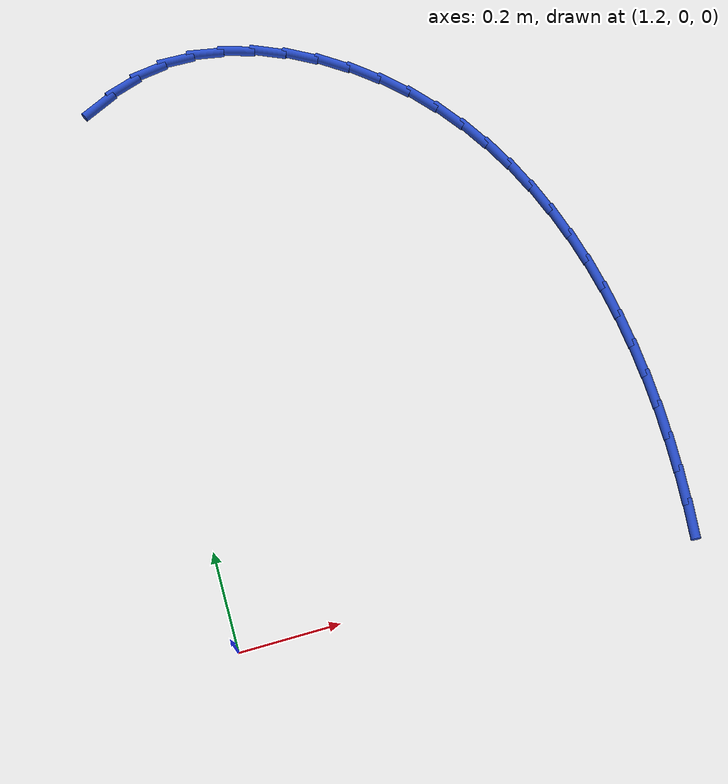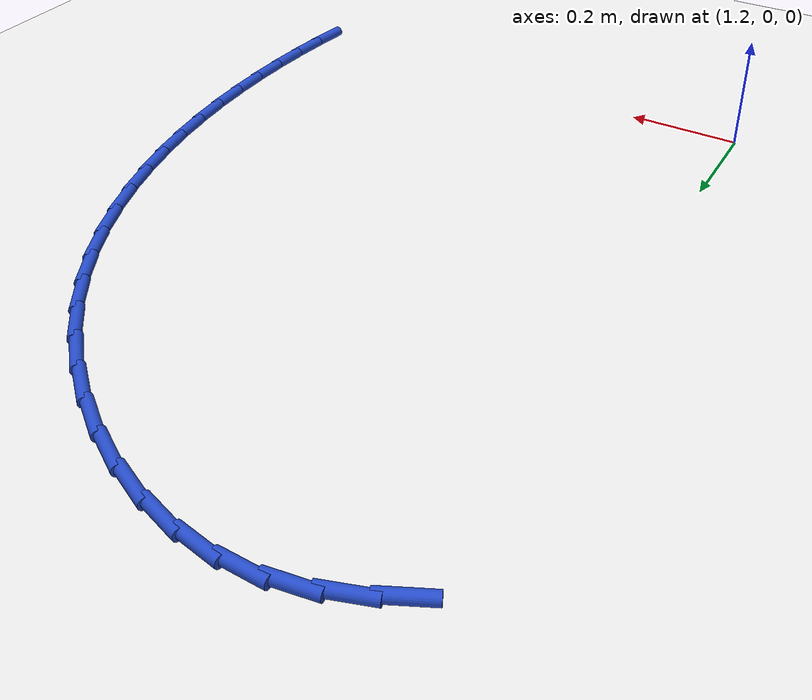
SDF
<sdf version="1.6">
 <world name="default">
  <model name="ground_plane">
   <static>1</static>
   <link name="link">
    <collision name="collision">
     <geometry><plane><normal>0 0 1</normal><size>100 100</size></plane></geometry>
     <surface><friction><ode><mu>100</mu><mu2>50</mu2></ode></friction></surface>
    </collision>
    <visual name="visual">
     <cast_shadows>0</cast_shadows>
     <geometry><plane><normal>0 0 1</normal><size>100 100</size></plane></geometry>
     <material>
      <script><uri>file://media/materials/scripts/gazebo.material</uri><name>Gazebo/WhiteGlow</name></script>
     </material>
    </visual>
   </link>
  </model>
  <model name="line">
   <link name="link_27">
    <pose>1.2015639100827145 1.1851119306090003 0.01 0 1.57 0.4538602692561115</pose>
    <collision name="collision">
     <geometry><cylinder><radius>0.01</radius><length>0.08</length></cylinder></geometry>
    </collision>
    <visual name="visual">
     <material>
      <script><name>Gazebo/Blue</name><uri>file://media/materials/scripts/gazebo.material</uri></script>
     </material>
     <geometry><cylinder><radius>0.01</radius><length>0.08</length></cylinder></geometry>
    </visual>
   </link>
   <link name="link_28">
    <pose>1.2601570572746963 1.2136951336286916 0.01 0 1.57 0.3276897388682531</pose>
    <collision name="collision">
     <geometry><cylinder><radius>0.01</radius><length>0.08</length></cylinder></geometry>
    </collision>
    <visual name="visual">
     <material>
      <script><name>Gazebo/Blue</name><uri>file://media/materials/scripts/gazebo.material</uri></script>
     </material>
     <geometry><cylinder><radius>0.01</radius><length>0.08</length></cylinder></geometry>
    </visual>
   </link>
   <link name="link_29">
    <pose>1.3202526689146474 1.2341243721097086 0.01 0 1.57 0.15443720086766038</pose>
    <collision name="collision">
     <geometry><cylinder><radius>0.01</radius><length>0.08</length></cylinder></geometry>
    </collision>
    <visual name="visual">
     <material>
      <script><name>Gazebo/Blue</name><uri>file://media/materials/scripts/gazebo.material</uri></script>
     </material>
     <geometry><cylinder><radius>0.01</radius><length>0.08</length></cylinder></geometry>
    </visual>
   </link>
   <link name="link_30">
    <pose>1.3825758231914693 1.2438266443450883 0.01 0 1.57 -0.02339864624832676</pose>
    <collision name="collision">
     <geometry><cylinder><radius>0.01</radius><length>0.08</length></cylinder></geometry>
    </collision>
    <visual name="visual">
     <material>
      <script><name>Gazebo/Blue</name><uri>file://media/materials/scripts/gazebo.material</uri></script>
     </material>
     <geometry><cylinder><radius>0.01</radius><length>0.08</length></cylinder></geometry>
    </visual>
   </link>
   <link name="link_31">
    <pose>1.4468393557570047 1.2423226901999507 0.01 0 1.57 -0.1763520755685597</pose>
    <collision name="collision">
     <geometry><cylinder><radius>0.01</radius><length>0.08</length></cylinder></geometry>
    </collision>
    <visual name="visual">
     <material>
      <script><name>Gazebo/Blue</name><uri>file://media/materials/scripts/gazebo.material</uri></script>
     </material>
     <geometry><cylinder><radius>0.01</radius><length>0.08</length></cylinder></geometry>
    </visual>
   </link>
   <link name="link_32">
    <pose>1.5119927717317077 1.2307121368201703 0.01 0 1.57 -0.30672730194467884</pose>
    <collision name="collision">
     <geometry><cylinder><radius>0.01</radius><length>0.08</length></cylinder></geometry>
    </collision>
    <visual name="visual">
     <material>
      <script><name>Gazebo/Blue</name><uri>file://media/materials/scripts/gazebo.material</uri></script>
     </material>
     <geometry><cylinder><radius>0.01</radius><length>0.08</length></cylinder></geometry>
    </visual>
   </link>
   <link name="link_33">
    <pose>1.576966837322935 1.210133371273216 0.01 0 1.57 -0.41935272130842277</pose>
    <collision name="collision">
     <geometry><cylinder><radius>0.01</radius><length>0.08</length></cylinder></geometry>
    </collision>
    <visual name="visual">
     <material>
      <script><name>Gazebo/Blue</name><uri>file://media/materials/scripts/gazebo.material</uri></script>
     </material>
     <geometry><cylinder><radius>0.01</radius><length>0.08</length></cylinder></geometry>
    </visual>
   </link>
   <link name="link_34">
    <pose>1.6406923187380418 1.1817247806265578 0.01 0 1.57 -0.5192680721739549</pose>
    <collision name="collision">
     <geometry><cylinder><radius>0.01</radius><length>0.08</length></cylinder></geometry>
    </collision>
    <visual name="visual">
     <material>
      <script><name>Gazebo/Blue</name><uri>file://media/materials/scripts/gazebo.material</uri></script>
     </material>
     <geometry><cylinder><radius>0.01</radius><length>0.08</length></cylinder></geometry>
    </visual>
   </link>
   <link name="link_35">
    <pose>1.7020999821843836 1.1466247519476649 0.01 0 1.57 -0.6111729169734123</pose>
    <collision name="collision">
     <geometry><cylinder><radius>0.01</radius><length>0.08</length></cylinder></geometry>
    </collision>
    <visual name="visual">
     <material>
      <script><name>Gazebo/Blue</name><uri>file://media/materials/scripts/gazebo.material</uri></script>
     </material>
     <geometry><cylinder><radius>0.01</radius><length>0.08</length></cylinder></geometry>
    </visual>
   </link>
   <link name="link_36">
    <pose>1.7601205938693167 1.1059716723040065 0.01 0 1.57 -0.699463475711775</pose>
    <collision name="collision">
     <geometry><cylinder><radius>0.01</radius><length>0.08</length></cylinder></geometry>
    </collision>
    <visual name="visual">
     <material>
      <script><name>Gazebo/Blue</name><uri>file://media/materials/scripts/gazebo.material</uri></script>
     </material>
     <geometry><cylinder><radius>0.01</radius><length>0.08</length></cylinder></geometry>
    </visual>
   </link>
   <link name="link_37">
    <pose>1.8136859520671191 1.0609032993851495 0.01 0 1.57 -0.7871317659783342</pose>
    <collision name="collision">
     <geometry><cylinder><radius>0.01</radius><length>0.08</length></cylinder></geometry>
    </collision>
    <visual name="visual">
     <material>
      <script><name>Gazebo/Blue</name><uri>file://media/materials/scripts/gazebo.material</uri></script>
     </material>
     <geometry><cylinder><radius>0.01</radius><length>0.08</length></cylinder></geometry>
    </visual>
   </link>
   <link name="link_38">
    <pose>1.8620762477513373 1.0123449330819245 0.01 0 1.57 -0.872496702733254</pose>
    <collision name="collision">
     <geometry><cylinder><radius>0.01</radius><length>0.08</length></cylinder></geometry>
    </collision>
    <visual name="visual">
     <material>
      <script><name>Gazebo/Blue</name><uri>file://media/materials/scripts/gazebo.material</uri></script>
     </material>
     <geometry><cylinder><radius>0.01</radius><length>0.08</length></cylinder></geometry>
    </visual>
   </link>
   <link name="link_39">
    <pose>1.9054250374542294 0.9607014715416686 0.01 0 1.57 -0.9540780060078512</pose>
    <collision name="collision">
     <geometry><cylinder><radius>0.01</radius><length>0.08</length></cylinder></geometry>
    </collision>
    <visual name="visual">
     <material>
      <script><name>Gazebo/Blue</name><uri>file://media/materials/scripts/gazebo.material</uri></script>
     </material>
     <geometry><cylinder><radius>0.01</radius><length>0.08</length></cylinder></geometry>
    </visual>
   </link>
   <link name="link_40">
    <pose>1.9439941324186176 0.9062996002696566 0.01 0 1.57 -1.0310103119718033</pose>
    <collision name="collision">
     <geometry><cylinder><radius>0.01</radius><length>0.08</length></cylinder></geometry>
    </collision>
    <visual name="visual">
     <material>
      <script><name>Gazebo/Blue</name><uri>file://media/materials/scripts/gazebo.material</uri></script>
     </material>
     <geometry><cylinder><radius>0.01</radius><length>0.08</length></cylinder></geometry>
    </visual>
   </link>
   <link name="link_41">
    <pose>1.9780453438873278 0.8494660047711644 0.01 0 1.57 -1.1027359775084074</pose>
    <collision name="collision">
     <geometry><cylinder><radius>0.01</radius><length>0.08</length></cylinder></geometry>
    </collision>
    <visual name="visual">
     <material>
      <script><name>Gazebo/Blue</name><uri>file://media/materials/scripts/gazebo.material</uri></script>
     </material>
     <geometry><cylinder><radius>0.01</radius><length>0.08</length></cylinder></geometry>
    </visual>
   </link>
   <link name="link_42">
    <pose>2.007840483103184 0.7905273705514672 0.01 0 1.57 -1.1689792693070489</pose>
    <collision name="collision">
     <geometry><cylinder><radius>0.01</radius><length>0.08</length></cylinder></geometry>
    </collision>
    <visual name="visual">
     <material>
      <script><name>Gazebo/Blue</name><uri>file://media/materials/scripts/gazebo.material</uri></script>
     </material>
     <geometry><cylinder><radius>0.01</radius><length>0.08</length></cylinder></geometry>
    </visual>
   </link>
   <link name="link_43">
    <pose>2.0336413613090105 0.7298103831158399 0.01 0 1.57 -1.2296959417531081</pose>
    <collision name="collision">
     <geometry><cylinder><radius>0.01</radius><length>0.08</length></cylinder></geometry>
    </collision>
    <visual name="visual">
     <material>
      <script><name>Gazebo/Blue</name><uri>file://media/materials/scripts/gazebo.material</uri></script>
     </material>
     <geometry><cylinder><radius>0.01</radius><length>0.08</length></cylinder></geometry>
    </visual>
   </link>
   <link name="link_44">
    <pose>2.055709738473027 0.6676416387824897 0.01 0 1.57 -1.2856004433954256</pose>
    <collision name="collision">
     <geometry><cylinder><radius>0.01</radius><length>0.08</length></cylinder></geometry>
    </collision>
    <visual name="visual">
     <material>
      <script><name>Gazebo/Blue</name><uri>file://media/materials/scripts/gazebo.material</uri></script>
     </material>
     <geometry><cylinder><radius>0.01</radius><length>0.08</length></cylinder></geometry>
    </visual>
   </link>
   <link name="link_45">
    <pose>2.074280484697806 0.6043009616261303 0.01 0 1.57 -1.3383153126762644</pose>
    <collision name="collision">
     <geometry><cylinder><radius>0.01</radius><length>0.08</length></cylinder></geometry>
    </collision>
    <visual name="visual">
     <material>
      <script><name>Gazebo/Blue</name><uri>file://media/materials/scripts/gazebo.material</uri></script>
     </material>
     <geometry><cylinder><radius>0.01</radius><length>0.08</length></cylinder></geometry>
    </visual>
   </link>
   <link name="link_46">
    <pose>2.089517563449428 0.5399448406884712 0.01 0 1.57 -1.388052538052509</pose>
    <collision name="collision">
     <geometry><cylinder><radius>0.01</radius><length>0.08</length></cylinder></geometry>
    </collision>
    <visual name="visual">
     <material>
      <script><name>Gazebo/Blue</name><uri>file://media/materials/scripts/gazebo.material</uri></script>
     </material>
     <geometry><cylinder><radius>0.01</radius><length>0.08</length></cylinder></geometry>
    </visual>
   </link>
   <link name="link_47">
    <pose>2.1015733873806317 0.47470967352168714 0.01 0 1.57 -1.4348221402034411</pose>
    <collision name="collision">
     <geometry><cylinder><radius>0.01</radius><length>0.08</length></cylinder></geometry>
    </collision>
    <visual name="visual">
     <material>
      <script><name>Gazebo/Blue</name><uri>file://media/materials/scripts/gazebo.material</uri></script>
     </material>
     <geometry><cylinder><radius>0.01</radius><length>0.08</length></cylinder></geometry>
    </visual>
   </link>
   <link name="link_48">
    <pose>2.110600369144156 0.40873185767795245 0.01 0 1.57 -1.4786849870080678</pose>
    <collision name="collision">
     <geometry><cylinder><radius>0.01</radius><length>0.08</length></cylinder></geometry>
    </collision>
    <visual name="visual">
     <material>
      <script><name>Gazebo/Blue</name><uri>file://media/materials/scripts/gazebo.material</uri></script>
     </material>
     <geometry><cylinder><radius>0.01</radius><length>0.08</length></cylinder></geometry>
    </visual>
   </link>
   <link name="link_49">
    <pose>2.1167509213927387 0.34214779070944185 0.01 0 1.57 -1.5197395441932915</pose>
    <collision name="collision">
     <geometry><cylinder><radius>0.01</radius><length>0.08</length></cylinder></geometry>
    </collision>
    <visual name="visual">
     <material>
      <script><name>Gazebo/Blue</name><uri>file://media/materials/scripts/gazebo.material</uri></script>
     </material>
     <geometry><cylinder><radius>0.01</radius><length>0.08</length></cylinder></geometry>
    </visual>
   </link>
   <link name="link_50">
    <pose>2.1201774567791167 0.2750938701683295 0.01 0 1.57 -1.5581101924415175</pose>
    <collision name="collision">
     <geometry><cylinder><radius>0.01</radius><length>0.08</length></cylinder></geometry>
    </collision>
    <visual name="visual">
     <material>
      <script><name>Gazebo/Blue</name><uri>file://media/materials/scripts/gazebo.material</uri></script>
     </material>
     <geometry><cylinder><radius>0.01</radius><length>0.08</length></cylinder></geometry>
    </visual>
   </link>
   <link name="link_51">
    <pose>2.1210323879560296 0.20770649360678992 0.01 0 1.57 1.5476551828001681</pose>
    <collision name="collision">
     <geometry><cylinder><radius>0.01</radius><length>0.08</length></cylinder></geometry>
    </collision>
    <visual name="visual">
     <material>
      <script><name>Gazebo/Blue</name><uri>file://media/materials/scripts/gazebo.material</uri></script>
     </material>
     <geometry><cylinder><radius>0.01</radius><length>0.08</length></cylinder></geometry>
    </visual>
   </link>
   <link name="link_52">
    <pose>2.1194681275762144 0.14012205857699753 0.01 0 1.57 1.5142223633349967</pose>
    <collision name="collision">
     <geometry><cylinder><radius>0.01</radius><length>0.08</length></cylinder></geometry>
    </collision>
    <visual name="visual">
     <material>
      <script><name>Gazebo/Blue</name><uri>file://media/materials/scripts/gazebo.material</uri></script>
     </material>
     <geometry><cylinder><radius>0.01</radius><length>0.08</length></cylinder></geometry>
    </visual>
   </link>
   <link name="link_53">
    <pose>2.115637088292409 0.07247696263112674 0.01 0 1.57 1.483032686457824</pose>
    <collision name="collision">
     <geometry><cylinder><radius>0.01</radius><length>0.08</length></cylinder></geometry>
    </collision>
    <visual name="visual">
     <material>
      <script><name>Gazebo/Blue</name><uri>file://media/materials/scripts/gazebo.material</uri></script>
     </material>
     <geometry><cylinder><radius>0.01</radius><length>0.08</length></cylinder></geometry>
    </visual>
   </link>
   <link name="link_54">
    <pose>2.1096916827573517 0.004907603321352136 0.01 0 1.57 1.4539368268404707</pose>
    <collision name="collision">
     <geometry><cylinder><radius>0.01</radius><length>0.08</length></cylinder></geometry>
    </collision>
    <visual name="visual">
     <material>
      <script><name>Gazebo/Blue</name><uri>file://media/materials/scripts/gazebo.material</uri></script>
     </material>
     <geometry><cylinder><radius>0.01</radius><length>0.08</length></cylinder></geometry>
    </visual>
   </link>
  </model>
 </world>
</sdf>
